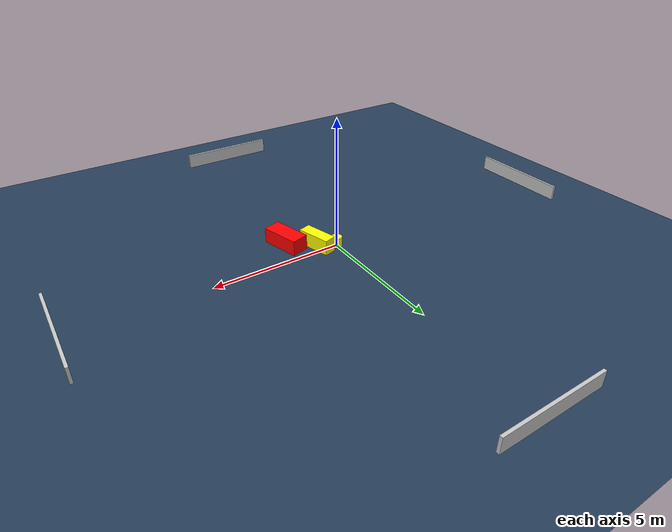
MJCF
<?xml version="1.0" ?>
<mujoco model="generated_environment">
  <option timestep="0.01" integrator="RK4" cone="elliptic"/>
  <default>
    <geom density="1"/>
  </default>
  <asset>
    <texture builtin="gradient" height="3072" name="skybox" rgb1="0.3 0.5 0.7" rgb2="0 0 0" type="skybox" width="512"/>
    <texture builtin="checker" height="300" name="groundplane" rgb1="0.2 0.3 0.4" rgb2="0.1 0.2 0.3" type="2d" width="300"/>
    <material name="groundplane" reflectance="0.2" texrepeat="5 5" texture="groundplane"/>
  </asset>
  <worldbody>
    <light dir="0 0 -1" directional="true" pos="0 0 1.5"/>
    <geom condim="3" friction="0.5 0.005 0.001" material="groundplane" name="floor" pos="0 0 0" size="0 0 0.05" type="plane"/>
    <body name="walls">
      <geom name="wall_1" condim="4" pos="-10.0 0.0 0.3" rgba="0.800000011920929 0.800000011920929 0.800000011920929 1.0" size="0.05 2.0 0.3" type="box"/>
      <geom name="wall_2" condim="4" pos="10.0 0.0 0.3" rgba="0.800000011920929 0.800000011920929 0.800000011920929 1.0" size="0.05 2.0 0.3" type="box"/>
      <geom name="wall_3" condim="4" pos="0.0 -10.0 0.3" rgba="0.800000011920929 0.800000011920929 0.800000011920929 1.0" size="2.0 0.05 0.3" type="box"/>
      <geom name="wall_4" condim="4" pos="0.0 10.0 0.3" rgba="0.800000011920929 0.800000011920929 0.800000011920929 1.0" size="2.0 0.05 0.3" type="box"/>
    </body>
    <body name="robot">
      <joint name="joint_x" type="slide" pos="0 0 0" axis="1 0 0"/>
      <joint name="joint_y" type="slide" pos="0 0 0" axis="0 1 0"/>
      <geom name="robot" type="cylinder" pos="0.0 0.0 0.2" size="0.2 0.2 0.0" mass="5.0" friction="1.0 0.005 0.0001" condim="4" rgba="1.0 1.0 0.0 1.0"/>
    </body>
    <body name="obstacle_1_movable">
      <geom name="obstacle_1_movable" condim="4" pos="0.6669232826610939 -0.3219499044389753 0.3" euler="0 0 285.80993250124675" friction="0.0 0.005 0.001" rgba="1.0 1.0 0.0 1.0" size="0.6602216918574428 0.2397278412948325 0.3" type="box" mass="0.1"/>
      <joint type="free"/>
    </body>
    <body name="obstacle_2_static">
      <geom name="obstacle_2_static" condim="4" pos="1.5969863153920096 -1.0755668029765355 0.3" euler="0 0 195.42476033674626" friction="0.0 0.005 0.001" rgba="1.0 0.0 0.0 1.0" size="0.342440615158214 0.7669296188920762 0.3" type="box"/>
    </body>
  </worldbody>
  <actuator>
    <motor name="actuator_x" joint="joint_x" gear="1" ctrlrange="-1 1"/>
    <motor name="actuator_y" joint="joint_y" gear="1" ctrlrange="-1 1"/>
  </actuator>
</mujoco>
